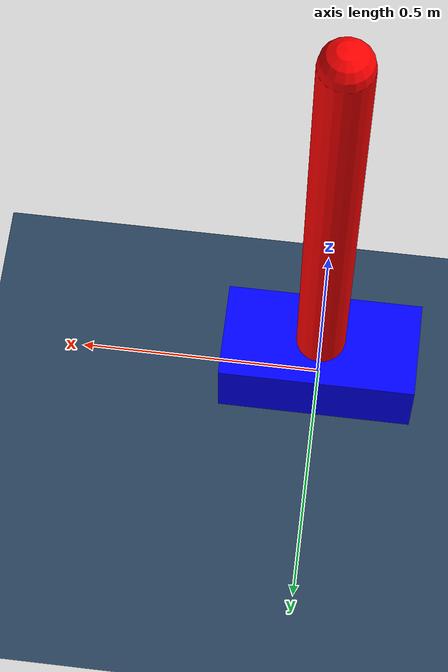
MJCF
<mujoco>
  <asset>
    <texture name="checker" type="2d" builtin="checker" width="512" height="512" rgb1="0.2 0.3 0.4" rgb2="0.1 0.2 0.3"/>
    <material name="groundmat" texture="checker" texrepeat="4 4" reflectance="0.2"/>
  </asset>

  <worldbody>
    <!-- Ground Plane -->
    <geom name="floor" type="plane" size="10 10 0.1" material="groundmat" pos="0 0 0" contype="0" conaffinity="0"/>

    <!-- Cart and Pole -->
    <body name="cart" pos="0 0 0.05">
      <joint name="slider" type="slide" axis="1 0 0"/>
      <geom type="box" size="0.2 0.1 0.1" rgba="0 0 1 1"/>
      <body name="pole" pos="0 0 0.1">
        <joint name="hinge" type="hinge" axis="0 1 0"/>
        <geom type="capsule" fromto="0 0 0 0 0 1" size="0.05" rgba="1 0 0 1"/>
      </body>
    </body>
  </worldbody>

  <actuator>
    <motor joint="slider" ctrlrange="-10 10" ctrllimited="true"/>
  </actuator>
</mujoco>
